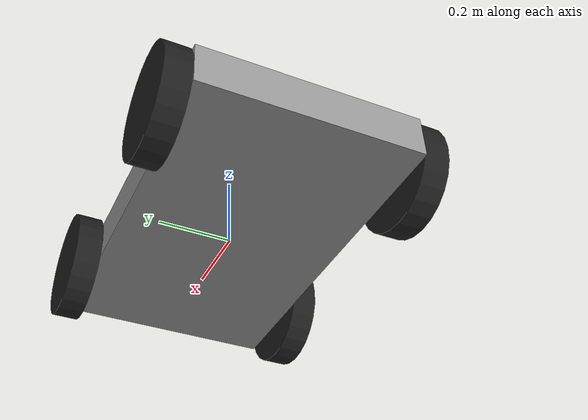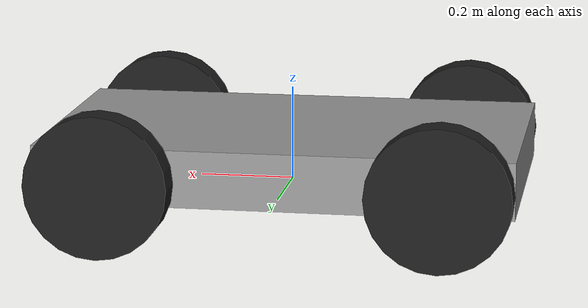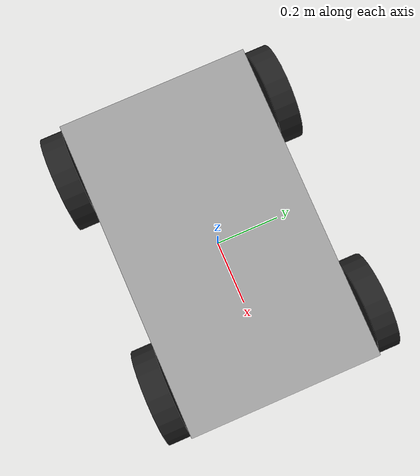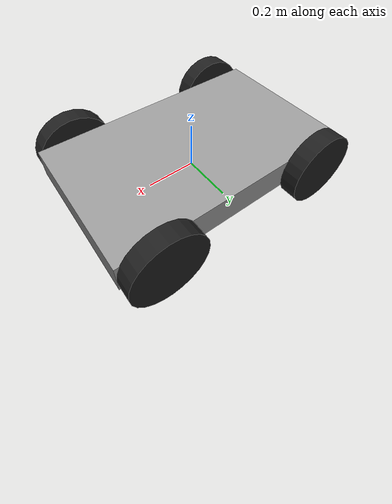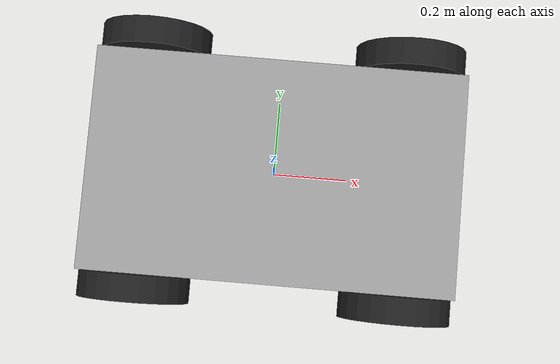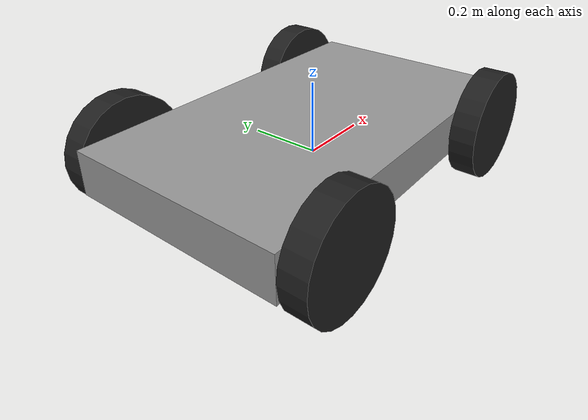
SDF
<sdf version='1.7'>
  <model name='four_wheel_bot'>
    <!-- Base footprint link (no inertia) -->
    <link name='base_footprint'>
      <visual name='base_footprint_visual'>
        <pose>0 0 0 0 -0 0</pose>
        <geometry>
          <box>
            <size>0.001 0.001 0.001</size>
          </box>
        </geometry>
      </visual>
    </link>

    <!-- Body link -->
    <link name='body_link'>
      <inertial>
        <pose>0 0 0.06 0 -0 0</pose>
        <mass>10</mass>
        <inertia>
          <ixx>0.312</ixx>
          <ixy>0</ixy>
          <ixz>0</ixz>
          <iyy>0.845333</iyy>
          <iyz>0</iyz>
          <izz>1.13333</izz>
        </inertia>
      </inertial>
      <collision name='body_link_collision'>
        <pose>0 0 0.06 0 -0 0</pose>
        <geometry>
          <box>
            <size>1 0.6 0.12</size>
          </box>
        </geometry>
        <surface>
          <contact>
            <ode/>
          </contact>
          <friction>
            <ode>
              <mu>0.2</mu>
              <mu2>0.2</mu2>
            </ode>
          </friction>
        </surface>
      </collision>
      <visual name='body_link_visual'>
        <pose>0 0 0.06 0 -0 0</pose>
        <geometry>
          <box>
            <size>1 0.6 0.12</size>
          </box>
        </geometry>
        <material>
          <script>
            <name>Gazebo/Grey</name>
            <uri>file://media/materials/scripts/gazebo.material</uri>
          </script>
        </material>
      </visual>
    </link>

    <!-- Fixed joint from base_footprint to body -->
    <joint name='base_footprint_to_body' type='fixed'>
      <parent>base_footprint</parent>
      <child>body_link</child>
      <pose>0 0 0.1 0 -0 0</pose>
    </joint>
    <joint name='wheel1_joint' type='revolute'>
      <pose relative_to='body_link'>0.35 -0.335 0.05 0 -0 0</pose>
      <parent>body_link</parent>
      <child>wheel1_link</child>
      <axis>
        <xyz>0 1 0</xyz>
        <limit>
          <lower>-1e+16</lower>
          <upper>1e+16</upper>
        </limit>
        <dynamics>
          <spring_reference>0</spring_reference>
          <spring_stiffness>0</spring_stiffness>
        </dynamics>
      </axis>
    </joint>
    <link name='wheel1_link'>
      <pose relative_to='wheel1_joint'>0 0 0 0 -0 0</pose>
      <inertial>
        <pose>0 0 0 0 -0 0</pose>
        <mass>1</mass>
        <inertia>
          <ixx>0.00603333</ixx>
          <ixy>0</ixy>
          <ixz>0</ixz>
          <iyy>0.01125</iyy>
          <iyz>0</iyz>
          <izz>0.00603333</izz>
        </inertia>
      </inertial>
      <collision name='wheel1_link_collision'>
        <pose>0 0 0 1.5708 -0 0</pose>
        <geometry>
          <cylinder>
            <length>0.07</length>
            <radius>0.15</radius>
          </cylinder>
        </geometry>
        <surface>
          <contact>
            <ode/>
          </contact>
          <friction>
            <ode>
              <mu>0.2</mu>
              <mu2>0.2</mu2>
            </ode>
          </friction>
        </surface>
      </collision>
      <visual name='wheel1_link_visual'>
        <pose>0 0 0 1.5708 -0 0</pose>
        <geometry>
          <cylinder>
            <length>0.07</length>
            <radius>0.15</radius>
          </cylinder>
        </geometry>
        <material>
          <script>
            <name>Gazebo/Black</name>
            <uri>file://media/materials/scripts/gazebo.material</uri>
          </script>
        </material>
      </visual>
    </link>
    <joint name='wheel2_joint' type='revolute'>
      <pose relative_to='body_link'>0.35 0.335 0.05 0 -0 0</pose>
      <parent>body_link</parent>
      <child>wheel2_link</child>
      <axis>
        <xyz>0 1 0</xyz>
        <limit>
          <lower>-1e+16</lower>
          <upper>1e+16</upper>
        </limit>
        <dynamics>
          <spring_reference>0</spring_reference>
          <spring_stiffness>0</spring_stiffness>
        </dynamics>
      </axis>
    </joint>
    <link name='wheel2_link'>
      <pose relative_to='wheel2_joint'>0 0 0 0 -0 0</pose>
      <inertial>
        <pose>0 0 0 0 -0 0</pose>
        <mass>1</mass>
        <inertia>
          <ixx>0.00603333</ixx>
          <ixy>0</ixy>
          <ixz>0</ixz>
          <iyy>0.01125</iyy>
          <iyz>0</iyz>
          <izz>0.00603333</izz>
        </inertia>
      </inertial>
      <collision name='wheel2_link_collision'>
        <pose>0 0 0 1.5708 -0 0</pose>
        <geometry>
          <cylinder>
            <length>0.07</length>
            <radius>0.15</radius>
          </cylinder>
        </geometry>
        <surface>
          <contact>
            <ode/>
          </contact>
          <friction>
            <ode>
              <mu>0.2</mu>
              <mu2>0.2</mu2>
            </ode>
          </friction>
        </surface>
      </collision>
      <visual name='wheel2_link_visual'>
        <pose>0 0 0 1.5708 -0 0</pose>
        <geometry>
          <cylinder>
            <length>0.07</length>
            <radius>0.15</radius>
          </cylinder>
        </geometry>
        <material>
          <script>
            <name>Gazebo/Black</name>
            <uri>file://media/materials/scripts/gazebo.material</uri>
          </script>
        </material>
      </visual>
    </link>
    <joint name='wheel3_joint' type='revolute'>
      <pose relative_to='body_link'>-0.35 -0.335 0.05 0 -0 0</pose>
      <parent>body_link</parent>
      <child>wheel3_link</child>
      <axis>
        <xyz>0 1 0</xyz>
        <limit>
          <lower>-1e+16</lower>
          <upper>1e+16</upper>
        </limit>
        <dynamics>
          <spring_reference>0</spring_reference>
          <spring_stiffness>0</spring_stiffness>
        </dynamics>
      </axis>
    </joint>
    <link name='wheel3_link'>
      <pose relative_to='wheel3_joint'>0 0 0 0 -0 0</pose>
      <inertial>
        <pose>0 0 0 0 -0 0</pose>
        <mass>1</mass>
        <inertia>
          <ixx>0.00603333</ixx>
          <ixy>0</ixy>
          <ixz>0</ixz>
          <iyy>0.01125</iyy>
          <iyz>0</iyz>
          <izz>0.00603333</izz>
        </inertia>
      </inertial>
      <collision name='wheel3_link_collision'>
        <pose>0 0 0 1.5708 -0 0</pose>
        <geometry>
          <cylinder>
            <length>0.07</length>
            <radius>0.15</radius>
          </cylinder>
        </geometry>
        <surface>
          <contact>
            <ode/>
          </contact>
          <friction>
            <ode>
              <mu>0.2</mu>
              <mu2>0.2</mu2>
            </ode>
          </friction>
        </surface>
      </collision>
      <visual name='wheel3_link_visual'>
        <pose>0 0 0 1.5708 -0 0</pose>
        <geometry>
          <cylinder>
            <length>0.07</length>
            <radius>0.15</radius>
          </cylinder>
        </geometry>
        <material>
          <script>
            <name>Gazebo/Black</name>
            <uri>file://media/materials/scripts/gazebo.material</uri>
          </script>
        </material>
      </visual>
    </link>
    <joint name='wheel4_joint' type='revolute'>
      <pose relative_to='body_link'>-0.35 0.335 0.05 0 -0 0</pose>
      <parent>body_link</parent>
      <child>wheel4_link</child>
      <axis>
        <xyz>0 1 0</xyz>
        <limit>
          <lower>-1e+16</lower>
          <upper>1e+16</upper>
        </limit>
        <dynamics>
          <spring_reference>0</spring_reference>
          <spring_stiffness>0</spring_stiffness>
        </dynamics>
      </axis>
    </joint>
    <link name='wheel4_link'>
      <pose relative_to='wheel4_joint'>0 0 0 0 -0 0</pose>
      <inertial>
        <pose>0 0 0 0 -0 0</pose>
        <mass>1</mass>
        <inertia>
          <ixx>0.00603333</ixx>
          <ixy>0</ixy>
          <ixz>0</ixz>
          <iyy>0.01125</iyy>
          <iyz>0</iyz>
          <izz>0.00603333</izz>
        </inertia>
      </inertial>
      <collision name='wheel4_link_collision'>
        <pose>0 0 0 1.5708 -0 0</pose>
        <geometry>
          <cylinder>
            <length>0.07</length>
            <radius>0.15</radius>
          </cylinder>
        </geometry>
        <surface>
          <contact>
            <ode/>
          </contact>
          <friction>
            <ode>
              <mu>0.2</mu>
              <mu2>0.2</mu2>
            </ode>
          </friction>
        </surface>
      </collision>
      <visual name='wheel4_link_visual'>
        <pose>0 0 0 1.5708 -0 0</pose>
        <geometry>
          <cylinder>
            <length>0.07</length>
            <radius>0.15</radius>
          </cylinder>
        </geometry>
        <material>
          <script>
            <name>Gazebo/Black</name>
            <uri>file://media/materials/scripts/gazebo.material</uri>
          </script>
        </material>
      </visual>
    </link>
    <plugin name='skid_steer_drive_controller' filename='libgazebo_ros_skid_steer_drive.so'>
      <updateRate>100.0</updateRate>
      <robotNamespace/>
      <leftFrontJoint>wheel4_joint</leftFrontJoint>
      <rightFrontJoint>wheel3_joint</rightFrontJoint>
      <leftRearJoint>wheel2_joint</leftRearJoint>
      <rightRearJoint>wheel1_joint</rightRearJoint>
      <wheelSeparation>0.67</wheelSeparation>
      <wheelDiameter>0.3</wheelDiameter>
      <torque>1000</torque>
      <commandTopic>cmd_vel</commandTopic>
      <odometryTopic>odom</odometryTopic>
      <odometryFrame>odom</odometryFrame>
      <robotBaseFrame>base_footprint</robotBaseFrame>
      <publishWheelTF>1</publishWheelTF>
      <publishOdomTF>1</publishOdomTF>
      <publishWheelJointState>1</publishWheelJointState>
      <covariance_x>0.0001</covariance_x>
      <covariance_y>0.0001</covariance_y>
      <covariance_yaw>0.01</covariance_yaw>
    </plugin>
    <static>0</static>
  </model>
</sdf>
